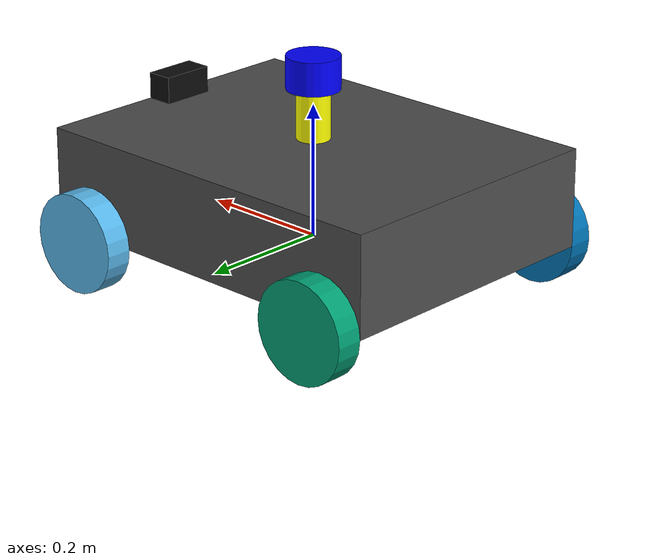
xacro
<?xml version="1.0"?>

<robot
    name="leader_follower_bot"
    xmlns:xacro="http://www.ros.org/wiki/xacro">

    <!-- ROBOT PARAMETERS                                         -->

    <xacro:arg name="prefix" default=""/>

    <xacro:arg name="cmd_vel_topic" default="/cmd_vel"/>

    <xacro:arg name="odom_topic" default="/odom"/>

    <xacro:arg name="odom_frame" default="odom"/>

    <xacro:arg name="base_frame" default="base_link"/>

    <xacro:arg name="lidar_topic" default="/front_lidar/scan"/>

    <xacro:arg name="camera_topic" default="/front_camera/image_raw"/>

    <xacro:arg name="tf_topic" default="/tf"/>

    <!-- ROBOT DIMENSIONS                                         -->

    <xacro:property
        name="robot_length"
        value="0.60"/>

    <xacro:property
        name="robot_width"
        value="0.45"/>

    <xacro:property
        name="robot_height"
        value="0.15"/>

    <xacro:property
        name="robot_mass"
        value="10.0"/>

    <!-- WHEEL DIMENSIONS                                         -->

    <xacro:property
        name="wheel_radius"
        value="0.075"/>

    <xacro:property
        name="wheel_width"
        value="0.04"/>

    <xacro:property
        name="wheel_mass"
        value="0.5"/>

    <!-- WHEEL POSITIONS                                          -->

    <xacro:property
        name="wheel_x"
        value="${robot_length / 2.0 - wheel_radius}"/>

    <xacro:property
        name="wheel_y"
        value="${robot_width / 2.0 + wheel_width / 2.0}"/>

    <xacro:property
        name="wheel_z"
        value="0.0"/>

    <!-- WHEEL FRICTION / CONTACT                                 -->

    <xacro:property
        name="wheel_mu1"
        value="0.9"/>

    <xacro:property
        name="wheel_mu2"
        value="0.2"/>

    <xacro:property
        name="wheel_kp"
        value="1000000.0"/>

    <xacro:property
        name="wheel_kd"
        value="1.0"/>

    <!-- ROBOT LINK NAMES                                         -->

    <xacro:property
        name="base_link_name"
        value="$(arg prefix)base_link"/>

    <xacro:property
        name="left_front_wheel_name"
        value="$(arg prefix)left_front_wheel"/>

    <xacro:property
        name="left_rear_wheel_name"
        value="$(arg prefix)left_rear_wheel"/>

    <xacro:property
        name="right_front_wheel_name"
        value="$(arg prefix)right_front_wheel"/>

    <xacro:property
        name="right_rear_wheel_name"
        value="$(arg prefix)right_rear_wheel"/>

    <!-- LIDAR DIMENSIONS                                         -->

    <xacro:property
        name="lidar_radius"
        value="0.04"/>

    <xacro:property
        name="lidar_height"
        value="0.05"/>

    <!-- LIDAR STAND                                              -->

    <xacro:property
        name="stand_height"
        value="0.10"/>

    <xacro:property
        name="stand_radius"
        value="0.025"/>

    <!-- CAMERA DIMENSIONS                                        -->

    <xacro:property
        name="camera_length"
        value="0.04"/>

    <xacro:property
        name="camera_width"
        value="0.08"/>

    <xacro:property
        name="camera_height"
        value="0.04"/>

    <!-- CAMERA POSITION                                          -->

    <xacro:property
        name="camera_x"
        value="${robot_length / 2.0 - camera_length / 2.0}"/>

    <xacro:property
        name="camera_y"
        value="0.0"/>

    <xacro:property
        name="camera_z"
        value="${robot_height + camera_height / 2.0}"/>

    <!-- INCLUDE COMPONENTS                                       -->

    <xacro:include filename="base.xacro"/>

    <xacro:include filename="wheels.xacro"/>

    <xacro:include filename="stand.xacro"/>

    <xacro:include filename="lidar.xacro"/>

    <xacro:include filename="camera.xacro"/>

    <!-- BASE                                                     -->

    <xacro:robot_base
        length="${robot_length}"
        width="${robot_width}"
        height="${robot_height}"
        mass="${robot_mass}"
        link_name="${base_link_name}"/>

    <!-- LEFT FRONT WHEEL                                         -->

    <xacro:wheel
        name="${left_front_wheel_name}"
        x="${wheel_x}"
        y="${wheel_y}"
        z="${wheel_z}"
        radius="${wheel_radius}"
        width="${wheel_width}"
        mass="${wheel_mass}"
        friction_mu1="${wheel_mu1}"
        friction_mu2="${wheel_mu2}"
        contact_kp="${wheel_kp}"
        contact_kd="${wheel_kd}"
        parent_link="${base_link_name}"/>

    <!-- LEFT REAR WHEEL                                          -->

    <xacro:wheel
        name="${left_rear_wheel_name}"
        x="-${wheel_x}"
        y="${wheel_y}"
        z="${wheel_z}"
        radius="${wheel_radius}"
        width="${wheel_width}"
        mass="${wheel_mass}"
        friction_mu1="${wheel_mu1}"
        friction_mu2="${wheel_mu2}"
        contact_kp="${wheel_kp}"
        contact_kd="${wheel_kd}"
        parent_link="${base_link_name}"/>

    <!-- RIGHT FRONT WHEEL                                        -->

    <xacro:wheel
        name="${right_front_wheel_name}"
        x="${wheel_x}"
        y="-${wheel_y}"
        z="${wheel_z}"
        radius="${wheel_radius}"
        width="${wheel_width}"
        mass="${wheel_mass}"
        friction_mu1="${wheel_mu1}"
        friction_mu2="${wheel_mu2}"
        contact_kp="${wheel_kp}"
        contact_kd="${wheel_kd}"
        parent_link="${base_link_name}"/>

    <!-- RIGHT REAR WHEEL                                         -->

    <xacro:wheel
        name="${right_rear_wheel_name}"
        x="-${wheel_x}"
        y="-${wheel_y}"
        z="${wheel_z}"
        radius="${wheel_radius}"
        width="${wheel_width}"
        mass="${wheel_mass}"
        friction_mu1="${wheel_mu1}"
        friction_mu2="${wheel_mu2}"
        contact_kp="${wheel_kp}"
        contact_kd="${wheel_kd}"
        parent_link="${base_link_name}"/>

    <!-- LIDAR                                                    -->

    <xacro:lidar
        name="$(arg prefix)front_lidar"
        radius="${lidar_radius}"
        height="${lidar_height}"
        topic="$(arg lidar_topic)"/>

    <!-- BASE -> LIDAR                                            -->

    <joint
        name="$(arg prefix)base_to_lidar"
        type="fixed">

        <parent link="${base_link_name}"/>

        <child link="$(arg prefix)front_lidar_link"/>

        <origin
            xyz="0 0 ${robot_height + stand_height}"
            rpy="0 0 0"/>

    </joint>

    <!-- LIDAR STAND                                              -->

    <xacro:lidar_stand
        name="$(arg prefix)lidar_stand"
        height="${stand_height}"
        radius="${stand_radius}"/>

    <joint
        name="$(arg prefix)base_to_lidar_stand"
        type="fixed">

        <parent link="${base_link_name}"/>

        <child link="$(arg prefix)lidar_stand_link"/>

        <origin
            xyz="0 0 ${robot_height}"
            rpy="0 0 0"/>

    </joint>

    <!-- FRONT CAMERA                                             -->

    <xacro:camera
        name="$(arg prefix)front_camera"
        x="${camera_x}"
        y="${camera_y}"
        z="${camera_z}"
        length="${camera_length}"
        width="${camera_width}"
        height="${camera_height}"
        topic="$(arg camera_topic)"
        parent_link="${base_link_name}"/>

    <!-- GAZEBO DIFFERENTIAL DRIVE                                -->

    <gazebo>

        <plugin
            filename="gz-sim-diff-drive-system"
            name="gz::sim::systems::DiffDrive">

            <!-- LEFT WHEELS                                        -->

            <left_joint>
                ${left_front_wheel_name}_joint
            </left_joint>

            <left_joint>
                ${left_rear_wheel_name}_joint
            </left_joint>

            <!-- RIGHT WHEELS                                       -->

            <right_joint>
                ${right_front_wheel_name}_joint
            </right_joint>

            <right_joint>
                ${right_rear_wheel_name}_joint
            </right_joint>

            <!-- ROBOT GEOMETRY                                     -->

            <wheel_separation>
                ${2.0 * wheel_y}
            </wheel_separation>

            <wheel_radius>
                ${wheel_radius}
            </wheel_radius>

            <!-- COMMAND TOPIC                                     -->

            <topic>
                $(arg cmd_vel_topic)
            </topic>

            <!-- ODOMETRY TOPIC                                    -->

            <odom_topic>
                $(arg odom_topic)
            </odom_topic>

            <!-- TF TOPIC                                          -->

            <tf_topic>
                $(arg tf_topic)
            </tf_topic>

            <!-- TF FRAMES                                         -->

            <frame_id>
                $(arg odom_frame)
            </frame_id>

            <child_frame_id>
                ${base_link_name}
            </child_frame_id>

            <!-- ODOMETRY RATE                                     -->

            <odom_publish_frequency>
                30
            </odom_publish_frequency>

        </plugin>

    </gazebo>

</robot>

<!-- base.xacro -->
<robot xmlns:xacro="http://www.ros.org/wiki/xacro">

    <!-- ROBOT BASE / CHASSIS                                     -->

    <xacro:macro
        name="robot_base"
        params="length width height mass link_name">

        <link name="${link_name}">

            <!-- VISUAL                                           -->

            <visual>

                <origin
                    xyz="0 0 ${height / 2.0}"
                    rpy="0 0 0"/>

                <geometry>

                    <box
                        size="${length} ${width} ${height}"/>

                </geometry>

                <material name="${link_name}_material">

                    <color
                        rgba="0.30 0.30 0.30 1.0"/>

                </material>

            </visual>

            <!-- COLLISION                                         -->

            <collision>

                <origin
                    xyz="0 0 ${height / 2.0}"
                    rpy="0 0 0"/>

                <geometry>

                    <box
                        size="${length} ${width} ${height}"/>

                </geometry>

            </collision>

            <!-- INERTIAL                                          -->

            <inertial>

                <origin
                    xyz="0 0 ${height / 2.0}"
                    rpy="0 0 0"/>

                <mass value="${mass}"/>

                <inertia
                    ixx="${(mass / 12.0) * (width * width + height * height)}"
                    ixy="0.0"
                    ixz="0.0"
                    iyy="${(mass / 12.0) * (length * length + height * height)}"
                    iyz="0.0"
                    izz="${(mass / 12.0) * (length * length + width * width)}"/>

            </inertial>

        </link>

    </xacro:macro>

</robot>

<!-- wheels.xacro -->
<robot xmlns:xacro="http://www.ros.org/wiki/xacro">

    <xacro:macro
        name="wheel"
        params="name x y z radius width mass friction_mu1 friction_mu2 contact_kp contact_kd parent_link">

        <!-- WHEEL LINK                                            -->

        <link name="${name}">

            <visual>

                <origin
                    xyz="0 0 0"
                    rpy="1.5708 0 0"/>

                <geometry>

                    <cylinder
                        radius="${radius}"
                        length="${width}"/>

                </geometry>

            </visual>

            <collision>

                <origin
                    xyz="0 0 0"
                    rpy="1.5708 0 0"/>

                <geometry>

                    <cylinder
                        radius="${radius}"
                        length="${width}"/>

                </geometry>

            </collision>

            <inertial>

                <origin
                    xyz="0 0 0"
                    rpy="0 0 0"/>

                <mass value="${mass}"/>

                <inertia
                    ixx="0.001"
                    ixy="0"
                    ixz="0"
                    iyy="0.001"
                    iyz="0"
                    izz="0.001"/>

            </inertial>

        </link>

        <!-- WHEEL JOINT                                           -->

        <joint
            name="${name}_joint"
            type="continuous">

            <parent link="${parent_link}"/>

            <child link="${name}"/>

            <origin
                xyz="${x} ${y} ${z}"
                rpy="0 0 0"/>

            <axis xyz="0 1 0"/>

        </joint>

        <!-- GAZEBO WHEEL CONTACT                                  -->

        <gazebo reference="${name}">

            <mu1>${friction_mu1}</mu1>

            <mu2>${friction_mu2}</mu2>

            <kp>${contact_kp}</kp>

            <kd>${contact_kd}</kd>

            <fdir1>1 0 0</fdir1>

        </gazebo>

    </xacro:macro>

    <!-- GAZEBO JOINT STATE PUBLISHER                             -->

    <gazebo>

        <plugin
            filename="gz-sim-joint-state-publisher-system"
            name="gz::sim::systems::JointStatePublisher"/>

    </gazebo>

</robot>

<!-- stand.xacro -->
<robot xmlns:xacro="http://www.ros.org/wiki/xacro">

    <xacro:macro
        name="lidar_stand"
        params="name height radius">

        <link name="${name}_link">

            <visual>

                <origin
                    xyz="0 0 ${height / 2.0}"
                    rpy="0 0 0"/>

                <geometry>
                    <cylinder
                        radius="${radius}"
                        length="${height}"/>
                </geometry>

                <material name="${name}_yellow">
                    <color rgba="1.0 1.0 0.0 1.0"/>
                </material>

            </visual>

            <collision>

                <origin
                    xyz="0 0 ${height / 2.0}"
                    rpy="0 0 0"/>

                <geometry>
                    <cylinder
                        radius="${radius}"
                        length="${height}"/>
                </geometry>

            </collision>

        </link>

    </xacro:macro>

</robot>

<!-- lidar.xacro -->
<robot xmlns:xacro="http://www.ros.org/wiki/xacro">

    <!-- LIDAR MACRO                                               -->

    <xacro:macro
        name="lidar"
        params="name radius height topic">

        <!-- LIDAR LINK                                            -->

        <link name="${name}_link">

            <visual>

                <origin
                    xyz="0 0 0"
                    rpy="0 0 0"/>

                <geometry>

                    <cylinder
                        radius="${radius}"
                        length="${height}"/>

                </geometry>

                <material name="${name}_material">

                    <color
                        rgba="0.0 0.0 1.0 1.0"/>

                </material>

            </visual>

            <collision>

                <origin
                    xyz="0 0 0"
                    rpy="0 0 0"/>

                <geometry>

                    <cylinder
                        radius="${radius}"
                        length="${height}"/>

                </geometry>

            </collision>

            <inertial>

                <origin
                    xyz="0 0 0"
                    rpy="0 0 0"/>

                <mass value="0.5"/>

                <inertia
                    ixx="0.0005"
                    ixy="0.0"
                    ixz="0.0"
                    iyy="0.0005"
                    iyz="0.0"
                    izz="0.0005"/>

            </inertial>

        </link>

        <!-- GAZEBO GPU LIDAR                                     -->

        <gazebo reference="${name}_link">

            <sensor
                name="${name}_sensor"
                type="gpu_lidar">

                <always_on>true</always_on>

                <visualize>true</visualize>

                <update_rate>10</update_rate>

                <!-- Robot-specific topic -->

                <topic>${topic}</topic>

                <!-- Sensor is mounted directly on the link -->

                <pose>
                    0 0 0 0 0 0
                </pose>

                <!-- SCAN                                            -->

                <lidar>

                    <scan>

                        <horizontal>

                            <samples>720</samples>

                            <resolution>1</resolution>

                            <min_angle>-3.14159</min_angle>

                            <max_angle>3.14159</max_angle>

                        </horizontal>

                    </scan>

                    <range>

                        <min>0.10</min>

                        <max>12.0</max>

                        <resolution>0.01</resolution>

                    </range>

                </lidar>

                <!-- NOISE                                           -->

                <noise>

                    <type>gaussian</type>

                    <mean>0.0</mean>

                    <stddev>0.01</stddev>

                </noise>

                <!-- GAZEBO FRAME                                    -->

                <gz_frame_id>
                    ${name}_link
                </gz_frame_id>

            </sensor>

        </gazebo>

    </xacro:macro>

</robot>

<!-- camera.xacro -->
<robot xmlns:xacro="http://www.ros.org/wiki/xacro">

    <!-- CAMERA MACRO                                              -->

    <xacro:macro
        name="camera"
        params="name x y z length width height topic parent_link">

        <!-- CAMERA LINK                                           -->

        <link name="${name}_link">

            <visual>

                <origin
                    xyz="0 0 0"
                    rpy="0 0 0"/>

                <geometry>

                    <box
                        size="${length} ${width} ${height}"/>

                </geometry>

                <material name="${name}_material">

                    <color
                        rgba="0.05 0.05 0.05 1.0"/>

                </material>

            </visual>

            <collision>

                <origin
                    xyz="0 0 0"
                    rpy="0 0 0"/>

                <geometry>

                    <box
                        size="${length} ${width} ${height}"/>

                </geometry>

            </collision>

            <inertial>

                <origin
                    xyz="0 0 0"
                    rpy="0 0 0"/>

                <mass value="0.2"/>

                <inertia
                    ixx="0.0001"
                    ixy="0.0"
                    ixz="0.0"
                    iyy="0.0001"
                    iyz="0.0"
                    izz="0.0001"/>

            </inertial>

        </link>

        <!-- CAMERA JOINT                                          -->

        <joint
            name="${name}_joint"
            type="fixed">

            <parent link="${parent_link}"/>

            <child link="${name}_link"/>

            <origin
                xyz="${x} ${y} ${z}"
                rpy="0 0 0"/>

        </joint>

        <!-- GAZEBO CAMERA                                         -->

        <gazebo reference="${name}_link">

            <sensor
                name="${name}_sensor"
                type="camera">

                <always_on>true</always_on>

                <visualize>true</visualize>

                <update_rate>30</update_rate>

                <topic>${topic}</topic>

                <gz_frame_id>${name}_link</gz_frame_id>

                <camera>

                    <horizontal_fov>1.0472</horizontal_fov>

                    <image>

                        <width>640</width>

                        <height>480</height>

                        <format>R8G8B8</format>

                    </image>

                    <clip>

                        <near>0.05</near>

                        <far>20.0</far>

                    </clip>

                    <distortion>

                        <k1>0.0</k1>
                        <k2>0.0</k2>
                        <k3>0.0</k3>
                        <p1>0.0</p1>
                        <p2>0.0</p2>

                        <center>
                            0.5 0.5
                        </center>

                    </distortion>

                </camera>

            </sensor>

        </gazebo>

    </xacro:macro>

</robot>
